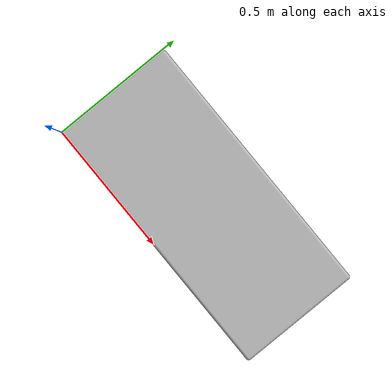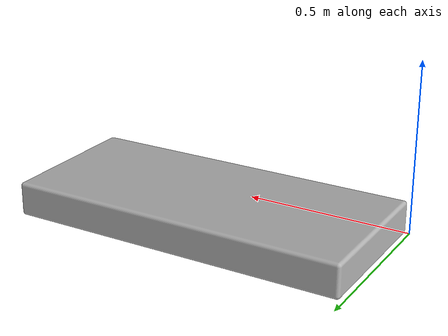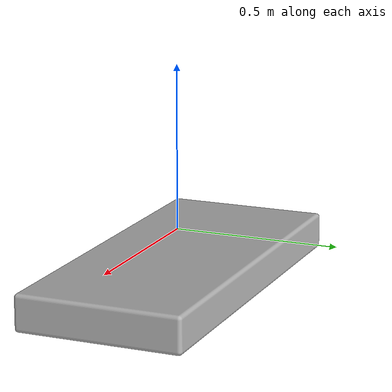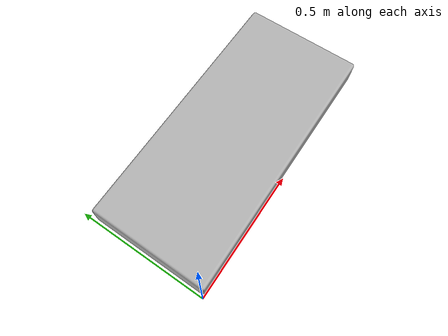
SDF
<?xml version="1.0" ?>
<sdf version="1.6">
  <model name="20-slope">
    <static>true</static>
    <link name="link">
      <collision name="collision">
        <geometry>
          <mesh>
            <scale>1 1 1</scale>
            <uri>model://Steppable_Obj_legged/meshes/black_obst_no_slope.STL</uri>
          </mesh>
        </geometry>
      </collision>
      <visual name="visual">
        <geometry>
          <mesh>
            <scale>1 1 1</scale>
            <uri>model://Steppable_Obj_legged/meshes/black_obst_no_slope.STL</uri>
          </mesh>
        </geometry>
        <material>
          <ambient>0.5 0.5 0.5 1</ambient>
          <diffuse>0.7 0.7 0.7 1</diffuse>
          <specular>0.1 0.1 0.1 1</specular>
          <emissive>0 0 0 1</emissive>
        </material>
      </visual>
    </link>
  </model>
</sdf>
